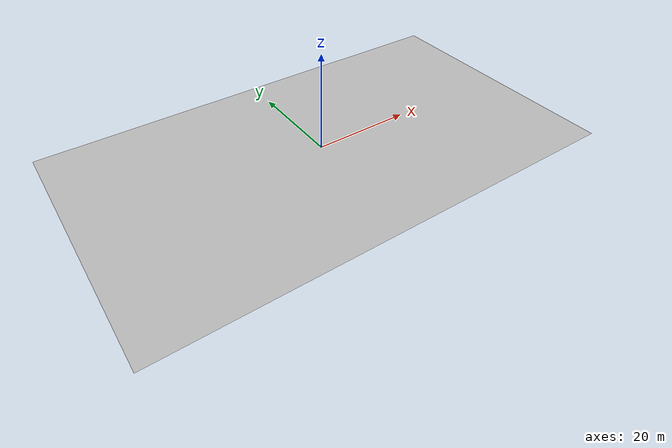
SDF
<?xml version="1.0" ?>
<sdf version="1.8">
  <model name="school_course">
    <static>true</static>
    <link name="base">

      <visual name="ground_visual">
        <geometry>
          <mesh><uri>model://driving_course/meshes/school_ground.obj</uri></mesh>
        </geometry>
      </visual>
      <collision name="ground_collision">
        <geometry>
          <plane><normal>0 0 1</normal><size>94.2045 53.1487</size></plane>
        </geometry>
        <surface>
          <friction><ode><mu>1.0</mu><mu2>1.0</mu2></ode></friction>
        </surface>
      </collision>

    </link>
  </model>
</sdf>
